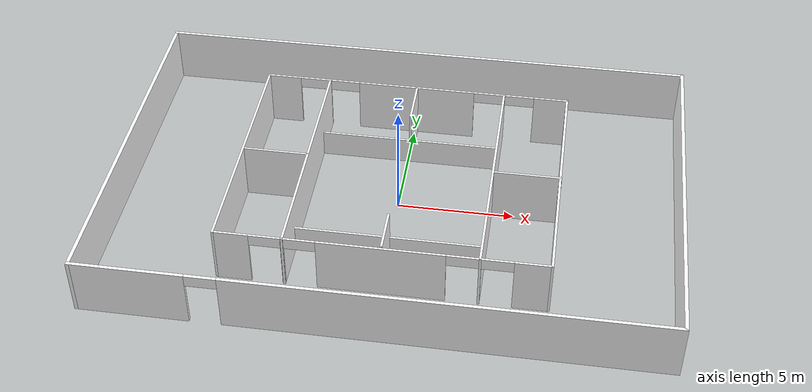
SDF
<?xml version='1.0'?>
<sdf version='1.7'>
  <model name='testbed_floor2'>
    <pose>0.036893 0.005445 0 0 -0 0</pose>
    <link name='Wall_0'>
      <collision name='Wall_0_Collision'>
        <geometry>
          <box>
            <size>24 0.15 2.5</size>
          </box>
        </geometry>
        <pose>0 0 1.25 0 -0 0</pose>
      </collision>
      <visual name='Wall_0_Visual'>
        <pose>0 0 1.25 0 -0 0</pose>
        <geometry>
          <box>
            <size>24 0.15 2.5</size>
          </box>
        </geometry>
        <material>
          <script>
            <uri>model://testbed_floor2/materials/scripts</uri>
            <uri>model://testbed_floor2/materials/textures</uri>

            <name>WallMaterial</name>
          </script>
          <ambient>1 1 1 1</ambient>
        </material>
        <meta>
          <layer>0</layer>
        </meta>
      </visual>
      <pose>0 7.925 0 0 -0 0</pose>
    </link>
    <link name='Wall_1'>
      <collision name='Wall_1_Collision'>
        <geometry>
          <box>
            <size>16 0.15 2.5</size>
          </box>
        </geometry>
        <pose>0 0 1.25 0 -0 0</pose>
      </collision>
      <visual name='Wall_1_Visual'>
        <pose>0 0 1.25 0 -0 0</pose>
        <geometry>
          <box>
            <size>16 0.15 2.5</size>
          </box>
        </geometry>
        <material>
          <script>
            <uri>model://testbed_floor2/materials/scripts</uri>
            <uri>model://testbed_floor2/materials/textures</uri>

            <name>WallMaterial</name>
          </script>
          <ambient>1 1 1 1</ambient>
        </material>
        <meta>
          <layer>0</layer>
        </meta>
      </visual>
      <pose>11.925 0 0 0 -0 -1.5708</pose>
    </link>
    <link name='Wall_16'>
      <collision name='Wall_16_Collision'>
        <geometry>
          <box>
            <size>10.7001 0.1 2.5</size>
          </box>
        </geometry>
        <pose>0 0 1.25 0 -0 0</pose>
      </collision>
      <visual name='Wall_16_Visual'>
        <pose>0 0 1.25 0 -0 0</pose>
        <geometry>
          <box>
            <size>10.7001 0.1 2.5</size>
          </box>
        </geometry>
        <material>
          <script>
            <uri>model://testbed_floor2/materials/scripts</uri>
            <uri>model://testbed_floor2/materials/textures</uri>

            <name>Wall3Material</name>
          </script>
          <ambient>1 1 1 1</ambient>
        </material>
        <meta>
          <layer>0</layer>
        </meta>
      </visual>
      <pose>-6.78889 -0.048445 0 0 -0 -1.5708</pose>
    </link>
    <link name='Wall_17'>
      <pose>0.011107 -5.34844 0 0 -0 0</pose>
      <visual name='Wall_17_Visual_0'>
        <pose>-6.09246 0 1.25 0 -0 0</pose>
        <geometry>
          <box>
            <size>1.51508 0.1 2.5</size>
          </box>
        </geometry>
        <material>
          <script>
            <uri>model://testbed_floor2/materials/scripts</uri>
            <uri>model://testbed_floor2/materials/textures</uri>

            <name>Wall2Material</name>
          </script>
          <ambient>1 1 1 1</ambient>
        </material>
        <meta>
          <layer>0</layer>
        </meta>
      </visual>
      <collision name='Wall_17_Collision_0'>
        <geometry>
          <box>
            <size>1.51508 0.1 2.5</size>
          </box>
        </geometry>
        <pose>-6.09246 0 1.25 0 -0 0</pose>
      </collision>
      <visual name='Wall_17_Visual_1'>
        <pose>-3.97545 0 1.25 0 -0 0</pose>
        <geometry>
          <box>
            <size>0.118938 0.1 2.5</size>
          </box>
        </geometry>
        <material>
          <script>
            <uri>model://testbed_floor2/materials/scripts</uri>
            <uri>model://testbed_floor2/materials/textures</uri>

            <name>Wall2Material</name>
          </script>
          <ambient>1 1 1 1</ambient>
        </material>
        <meta>
          <layer>0</layer>
        </meta>
      </visual>
      <collision name='Wall_17_Collision_1'>
        <geometry>
          <box>
            <size>0.118938 0.1 2.5</size>
          </box>
        </geometry>
        <pose>-3.97545 0 1.25 0 -0 0</pose>
      </collision>
      <visual name='Wall_17_Visual_2'>
        <pose>0.003583 0 1.25 0 -0 0</pose>
        <geometry>
          <box>
            <size>5.23912 0.1 2.5</size>
          </box>
        </geometry>
        <material>
          <script>
            <uri>model://testbed_floor2/materials/scripts</uri>
            <uri>model://testbed_floor2/materials/textures</uri>

            <name>Wall2Material</name>
          </script>
          <ambient>1 1 1 1</ambient>
        </material>
        <meta>
          <layer>0</layer>
        </meta>
      </visual>
      <collision name='Wall_17_Collision_2'>
        <geometry>
          <box>
            <size>5.23912 0.1 2.5</size>
          </box>
        </geometry>
        <pose>0.003583 0 1.25 0 -0 0</pose>
      </collision>
      <visual name='Wall_17_Visual_3'>
        <pose>3.97039 0 1.25 0 -0 0</pose>
        <geometry>
          <box>
            <size>0.09449 0.1 2.5</size>
          </box>
        </geometry>
        <material>
          <script>
            <uri>model://testbed_floor2/materials/scripts</uri>
            <uri>model://testbed_floor2/materials/textures</uri>

            <name>Wall2Material</name>
          </script>
          <ambient>1 1 1 1</ambient>
        </material>
        <meta>
          <layer>0</layer>
        </meta>
      </visual>
      <collision name='Wall_17_Collision_3'>
        <geometry>
          <box>
            <size>0.09449 0.1 2.5</size>
          </box>
        </geometry>
        <pose>3.97039 0 1.25 0 -0 0</pose>
      </collision>
      <visual name='Wall_17_Visual_4'>
        <pose>6.08382 0 1.25 0 -0 0</pose>
        <geometry>
          <box>
            <size>1.53236 0.1 2.5</size>
          </box>
        </geometry>
        <material>
          <script>
            <uri>model://testbed_floor2/materials/scripts</uri>
            <uri>model://testbed_floor2/materials/textures</uri>

            <name>Wall2Material</name>
          </script>
          <ambient>1 1 1 1</ambient>
        </material>
        <meta>
          <layer>0</layer>
        </meta>
      </visual>
      <collision name='Wall_17_Collision_4'>
        <geometry>
          <box>
            <size>1.53236 0.1 2.5</size>
          </box>
        </geometry>
        <pose>6.08382 0 1.25 0 -0 0</pose>
      </collision>
      <visual name='Wall_17_Visual_5'>
        <pose>-4.68492 0 2.25 0 -0 0</pose>
        <geometry>
          <box>
            <size>1.3 0.1 0.5</size>
          </box>
        </geometry>
        <material>
          <script>
            <uri>model://testbed_floor2/materials/scripts</uri>
            <uri>model://testbed_floor2/materials/textures</uri>

            <name>Wall2Material</name>
          </script>
          <ambient>1 1 1 1</ambient>
        </material>
        <meta>
          <layer>0</layer>
        </meta>
      </visual>
      <collision name='Wall_17_Collision_5'>
        <geometry>
          <box>
            <size>1.3 0.1 0.5</size>
          </box>
        </geometry>
        <pose>-4.68492 0 2.25 0 -0 0</pose>
      </collision>
      <visual name='Wall_17_Visual_6'>
        <pose>-3.26598 0 2.25 0 -0 0</pose>
        <geometry>
          <box>
            <size>1.3 0.1 0.5</size>
          </box>
        </geometry>
        <material>
          <script>
            <uri>model://testbed_floor2/materials/scripts</uri>
            <uri>model://testbed_floor2/materials/textures</uri>

            <name>Wall2Material</name>
          </script>
          <ambient>1 1 1 1</ambient>
        </material>
        <meta>
          <layer>0</layer>
        </meta>
      </visual>
      <collision name='Wall_17_Collision_6'>
        <geometry>
          <box>
            <size>1.3 0.1 0.5</size>
          </box>
        </geometry>
        <pose>-3.26598 0 2.25 0 -0 0</pose>
      </collision>
      <visual name='Wall_17_Visual_7'>
        <pose>3.27314 0 2.25 0 -0 0</pose>
        <geometry>
          <box>
            <size>1.3 0.1 0.5</size>
          </box>
        </geometry>
        <material>
          <script>
            <uri>model://testbed_floor2/materials/scripts</uri>
            <uri>model://testbed_floor2/materials/textures</uri>

            <name>Wall2Material</name>
          </script>
          <ambient>1 1 1 1</ambient>
        </material>
        <meta>
          <layer>0</layer>
        </meta>
      </visual>
      <collision name='Wall_17_Collision_7'>
        <geometry>
          <box>
            <size>1.3 0.1 0.5</size>
          </box>
        </geometry>
        <pose>3.27314 0 2.25 0 -0 0</pose>
      </collision>
      <visual name='Wall_17_Visual_8'>
        <pose>4.66763 0 2.25 0 -0 0</pose>
        <geometry>
          <box>
            <size>1.3 0.1 0.5</size>
          </box>
        </geometry>
        <material>
          <script>
            <uri>model://testbed_floor2/materials/scripts</uri>
            <uri>model://testbed_floor2/materials/textures</uri>

            <name>Wall2Material</name>
          </script>
          <ambient>1 1 1 1</ambient>
        </material>
        <meta>
          <layer>0</layer>
        </meta>
      </visual>
      <collision name='Wall_17_Collision_8'>
        <geometry>
          <box>
            <size>1.3 0.1 0.5</size>
          </box>
        </geometry>
        <pose>4.66763 0 2.25 0 -0 0</pose>
      </collision>
    </link>
    <link name='Wall_18'>
      <collision name='Wall_18_Collision'>
        <geometry>
          <box>
            <size>10.7 0.1 2.5</size>
          </box>
        </geometry>
        <pose>0 0 1.25 0 -0 0</pose>
      </collision>
      <visual name='Wall_18_Visual'>
        <pose>0 0 1.25 0 -0 0</pose>
        <geometry>
          <box>
            <size>10.7 0.1 2.5</size>
          </box>
        </geometry>
        <material>
          <script>
            <uri>model://testbed_floor2/materials/scripts</uri>
            <uri>model://testbed_floor2/materials/textures</uri>

            <name>Wall3Material</name>
          </script>
          <ambient>1 1 1 1</ambient>
        </material>
        <meta>
          <layer>0</layer>
        </meta>
      </visual>
      <pose>6.81111 -0.048445 0 0 -0 1.5708</pose>
    </link>
    <link name='Wall_19'>
      <pose>0.011107 5.25155 0 0 -0 3.14159</pose>
      <visual name='Wall_19_Visual_0'>
        <pose>-6.08399 0 1.25 0 -0 0</pose>
        <geometry>
          <box>
            <size>1.53202 0.1 2.5</size>
          </box>
        </geometry>
        <material>
          <script>
            <uri>model://testbed_floor2/materials/scripts</uri>
            <uri>model://testbed_floor2/materials/textures</uri>

            <name>Wall3Material</name>
          </script>
          <ambient>1 1 1 1</ambient>
        </material>
        <meta>
          <layer>0</layer>
        </meta>
      </visual>
      <collision name='Wall_19_Collision_0'>
        <geometry>
          <box>
            <size>1.53202 0.1 2.5</size>
          </box>
        </geometry>
        <pose>-6.08399 0 1.25 0 -0 0</pose>
      </collision>
      <visual name='Wall_19_Visual_1'>
        <pose>-3.96706 0 1.25 0 -0 0</pose>
        <geometry>
          <box>
            <size>0.10185 0.1 2.5</size>
          </box>
        </geometry>
        <material>
          <script>
            <uri>model://testbed_floor2/materials/scripts</uri>
            <uri>model://testbed_floor2/materials/textures</uri>

            <name>Wall3Material</name>
          </script>
          <ambient>1 1 1 1</ambient>
        </material>
        <meta>
          <layer>0</layer>
        </meta>
      </visual>
      <collision name='Wall_19_Collision_1'>
        <geometry>
          <box>
            <size>0.10185 0.1 2.5</size>
          </box>
        </geometry>
        <pose>-3.96706 0 1.25 0 -0 0</pose>
      </collision>
      <visual name='Wall_19_Visual_2'>
        <pose>0.004175 0 1.25 0 -0 0</pose>
        <geometry>
          <box>
            <size>5.24062 0.1 2.5</size>
          </box>
        </geometry>
        <material>
          <script>
            <uri>model://testbed_floor2/materials/scripts</uri>
            <uri>model://testbed_floor2/materials/textures</uri>

            <name>Wall3Material</name>
          </script>
          <ambient>1 1 1 1</ambient>
        </material>
        <meta>
          <layer>0</layer>
        </meta>
      </visual>
      <collision name='Wall_19_Collision_2'>
        <geometry>
          <box>
            <size>5.24062 0.1 2.5</size>
          </box>
        </geometry>
        <pose>0.004175 0 1.25 0 -0 0</pose>
      </collision>
      <visual name='Wall_19_Visual_3'>
        <pose>3.98024 0 1.25 0 -0 0</pose>
        <geometry>
          <box>
            <size>0.111498 0.1 2.5</size>
          </box>
        </geometry>
        <material>
          <script>
            <uri>model://testbed_floor2/materials/scripts</uri>
            <uri>model://testbed_floor2/materials/textures</uri>

            <name>Wall3Material</name>
          </script>
          <ambient>1 1 1 1</ambient>
        </material>
        <meta>
          <layer>0</layer>
        </meta>
      </visual>
      <collision name='Wall_19_Collision_3'>
        <geometry>
          <box>
            <size>0.111498 0.1 2.5</size>
          </box>
        </geometry>
        <pose>3.98024 0 1.25 0 -0 0</pose>
      </collision>
      <visual name='Wall_19_Visual_4'>
        <pose>6.093 0 1.25 0 -0 0</pose>
        <geometry>
          <box>
            <size>1.51402 0.1 2.5</size>
          </box>
        </geometry>
        <material>
          <script>
            <uri>model://testbed_floor2/materials/scripts</uri>
            <uri>model://testbed_floor2/materials/textures</uri>

            <name>Wall3Material</name>
          </script>
          <ambient>1 1 1 1</ambient>
        </material>
        <meta>
          <layer>0</layer>
        </meta>
      </visual>
      <collision name='Wall_19_Collision_4'>
        <geometry>
          <box>
            <size>1.51402 0.1 2.5</size>
          </box>
        </geometry>
        <pose>6.093 0 1.25 0 -0 0</pose>
      </collision>
      <visual name='Wall_19_Visual_5'>
        <pose>-4.66799 0 2.25 0 -0 0</pose>
        <geometry>
          <box>
            <size>1.3 0.1 0.5</size>
          </box>
        </geometry>
        <material>
          <script>
            <uri>model://testbed_floor2/materials/scripts</uri>
            <uri>model://testbed_floor2/materials/textures</uri>

            <name>Wall3Material</name>
          </script>
          <ambient>1 1 1 1</ambient>
        </material>
        <meta>
          <layer>0</layer>
        </meta>
      </visual>
      <collision name='Wall_19_Collision_5'>
        <geometry>
          <box>
            <size>1.3 0.1 0.5</size>
          </box>
        </geometry>
        <pose>-4.66799 0 2.25 0 -0 0</pose>
      </collision>
      <visual name='Wall_19_Visual_6'>
        <pose>-3.26614 0 2.25 0 -0 0</pose>
        <geometry>
          <box>
            <size>1.3 0.1 0.5</size>
          </box>
        </geometry>
        <material>
          <script>
            <uri>model://testbed_floor2/materials/scripts</uri>
            <uri>model://testbed_floor2/materials/textures</uri>

            <name>Wall3Material</name>
          </script>
          <ambient>1 1 1 1</ambient>
        </material>
        <meta>
          <layer>0</layer>
        </meta>
      </visual>
      <collision name='Wall_19_Collision_6'>
        <geometry>
          <box>
            <size>1.3 0.1 0.5</size>
          </box>
        </geometry>
        <pose>-3.26614 0 2.25 0 -0 0</pose>
      </collision>
      <visual name='Wall_19_Visual_7'>
        <pose>3.27449 0 2.25 0 -0 0</pose>
        <geometry>
          <box>
            <size>1.3 0.1 0.5</size>
          </box>
        </geometry>
        <material>
          <script>
            <uri>model://testbed_floor2/materials/scripts</uri>
            <uri>model://testbed_floor2/materials/textures</uri>

            <name>Wall3Material</name>
          </script>
          <ambient>1 1 1 1</ambient>
        </material>
        <meta>
          <layer>0</layer>
        </meta>
      </visual>
      <collision name='Wall_19_Collision_7'>
        <geometry>
          <box>
            <size>1.3 0.1 0.5</size>
          </box>
        </geometry>
        <pose>3.27449 0 2.25 0 -0 0</pose>
      </collision>
      <visual name='Wall_19_Visual_8'>
        <pose>4.68598 0 2.25 0 -0 0</pose>
        <geometry>
          <box>
            <size>1.3 0.1 0.5</size>
          </box>
        </geometry>
        <material>
          <script>
            <uri>model://testbed_floor2/materials/scripts</uri>
            <uri>model://testbed_floor2/materials/textures</uri>

            <name>Wall3Material</name>
          </script>
          <ambient>1 1 1 1</ambient>
        </material>
        <meta>
          <layer>0</layer>
        </meta>
      </visual>
      <collision name='Wall_19_Collision_8'>
        <geometry>
          <box>
            <size>1.3 0.1 0.5</size>
          </box>
        </geometry>
        <pose>4.68598 0 2.25 0 -0 0</pose>
      </collision>
    </link>
    <link name='Wall_2'>
      <pose>0 -7.925 0 0 -0 3.14159</pose>
      <visual name='Wall_2_Visual_0'>
        <pose>-3.01492 0 1.25 0 -0 0</pose>
        <geometry>
          <box>
            <size>17.9702 0.15 2.5</size>
          </box>
        </geometry>
        <material>
          <script>
            <uri>model://testbed_floor2/materials/scripts</uri>
            <uri>model://testbed_floor2/materials/textures</uri>

            <name>WallMaterial</name>
          </script>
          <ambient>1 1 1 1</ambient>
        </material>
        <meta>
          <layer>0</layer>
        </meta>
      </visual>
      <collision name='Wall_2_Collision_0'>
        <geometry>
          <box>
            <size>17.9702 0.15 2.5</size>
          </box>
        </geometry>
        <pose>-3.01492 0 1.25 0 -0 0</pose>
      </collision>
      <visual name='Wall_2_Visual_1'>
        <pose>9.63508 0 1.25 0 -0 0</pose>
        <geometry>
          <box>
            <size>4.72984 0.15 2.5</size>
          </box>
        </geometry>
        <material>
          <script>
            <uri>model://testbed_floor2/materials/scripts</uri>
            <uri>model://testbed_floor2/materials/textures</uri>

            <name>WallMaterial</name>
          </script>
          <ambient>1 1 1 1</ambient>
        </material>
        <meta>
          <layer>0</layer>
        </meta>
      </visual>
      <collision name='Wall_2_Collision_1'>
        <geometry>
          <box>
            <size>4.72984 0.15 2.5</size>
          </box>
        </geometry>
        <pose>9.63508 0 1.25 0 -0 0</pose>
      </collision>
      <visual name='Wall_2_Visual_2'>
        <pose>6.62016 0 2.25 0 -0 0</pose>
        <geometry>
          <box>
            <size>1.3 0.15 0.5</size>
          </box>
        </geometry>
        <material>
          <script>
            <uri>model://testbed_floor2/materials/scripts</uri>
            <uri>model://testbed_floor2/materials/textures</uri>

            <name>WallMaterial</name>
          </script>
          <ambient>1 1 1 1</ambient>
        </material>
        <meta>
          <layer>0</layer>
        </meta>
      </visual>
      <collision name='Wall_2_Collision_2'>
        <geometry>
          <box>
            <size>1.3 0.15 0.5</size>
          </box>
        </geometry>
        <pose>6.62016 0 2.25 0 -0 0</pose>
      </collision>
    </link>
    <link name='Wall_21'>
      <collision name='Wall_21_Collision'>
        <geometry>
          <box>
            <size>10.6 0.1 2.5</size>
          </box>
        </geometry>
        <pose>0 0 1.25 0 -0 0</pose>
      </collision>
      <visual name='Wall_21_Visual'>
        <pose>0 0 1.25 0 -0 0</pose>
        <geometry>
          <box>
            <size>10.6 0.1 2.5</size>
          </box>
        </geometry>
        <material>
          <script>
            <uri>model://testbed_floor2/materials/scripts</uri>
            <uri>model://testbed_floor2/materials/textures</uri>

            <name>Wall3Material</name>
          </script>
          <ambient>1 1 1 1</ambient>
        </material>
        <meta>
          <layer>0</layer>
        </meta>
      </visual>
      <pose>-3.95986 -0.104445 0 0 -0 -1.5708</pose>
    </link>
    <link name='Wall_29'>
      <collision name='Wall_29_Collision'>
        <geometry>
          <box>
            <size>2.8 0.1 2.5</size>
          </box>
        </geometry>
        <pose>0 0 1.25 0 -0 0</pose>
      </collision>
      <visual name='Wall_29_Visual'>
        <pose>0 0 1.25 0 -0 0</pose>
        <geometry>
          <box>
            <size>2.8 0.1 2.5</size>
          </box>
        </geometry>
        <material>
          <script>
            <uri>model://testbed_floor2/materials/scripts</uri>
            <uri>model://testbed_floor2/materials/textures</uri>

            <name>InnerWallMaterial</name>
          </script>
          <ambient>1 1 1 1</ambient>
        </material>
        <meta>
          <layer>0</layer>
        </meta>
      </visual>
      <pose>-5.33289 -0.060445 0 0 -0 0</pose>
    </link>
    <link name='Wall_31'>
      <collision name='Wall_31_Collision'>
        <geometry>
          <box>
            <size>2.9 0.1 2.5</size>
          </box>
        </geometry>
        <pose>0 0 1.25 0 -0 0</pose>
      </collision>
      <visual name='Wall_31_Visual'>
        <pose>0 0 1.25 0 -0 0</pose>
        <geometry>
          <box>
            <size>2.9 0.1 2.5</size>
          </box>
        </geometry>
        <material>
          <script>
            <uri>model://testbed_floor2/materials/scripts</uri>
            <uri>model://testbed_floor2/materials/textures</uri>

            <name>WallMaterial</name>
          </script>
          <ambient>1 1 1 1</ambient>
        </material>
        <meta>
          <layer>0</layer>
        </meta>
      </visual>
      <pose>5.42511 -0.060445 0 0 -0 3.14159</pose>
    </link>
    <link name='Wall_34'>
      <collision name='Wall_34_Collision'>
        <geometry>
          <box>
            <size>7.95047 0.1 1.2</size>
          </box>
        </geometry>
        <pose>0 0 0.6 0 -0 0</pose>
      </collision>
      <visual name='Wall_34_Visual'>
        <pose>0 0 0.6 0 -0 0</pose>
        <geometry>
          <box>
            <size>7.95047 0.1 1.2</size>
          </box>
        </geometry>
        <material>
          <script>
            <uri>model://testbed_floor2/materials/scripts</uri>
            <uri>model://testbed_floor2/materials/textures</uri>

            <name>Wall3Material</name>
          </script>
          <ambient>1 1 1 1</ambient>
        </material>
        <meta>
          <layer>0</layer>
        </meta>
      </visual>
      <pose>-0.014893 -3.29745 0 0 -0 0</pose>
    </link>
    <link name='Wall_36'>
      <collision name='Wall_36_Collision'>
        <geometry>
          <box>
            <size>7.95029 0.1 1.2</size>
          </box>
        </geometry>
        <pose>0 0 0.6 0 -0 0</pose>
      </collision>
      <visual name='Wall_36_Visual'>
        <pose>0 0 0.6 0 -0 0</pose>
        <geometry>
          <box>
            <size>7.95029 0.1 1.2</size>
          </box>
        </geometry>
        <material>
          <script>
            <uri>model://testbed_floor2/materials/scripts</uri>
            <uri>model://testbed_floor2/materials/textures</uri>

            <name>Wall3Material</name>
          </script>
          <ambient>1 1 1 1</ambient>
        </material>
        <meta>
          <layer>0</layer>
        </meta>
      </visual>
      <pose>-0.049893 3.07056 0 0 -0 0</pose>
    </link>
    <link name='Wall_38'>
      <collision name='Wall_38_Collision'>
        <geometry>
          <box>
            <size>1.94976 0.1 2.5</size>
          </box>
        </geometry>
        <pose>0 0 1.25 0 -0 0</pose>
      </collision>
      <visual name='Wall_38_Visual'>
        <pose>0 0 1.25 0 -0 0</pose>
        <geometry>
          <box>
            <size>1.94976 0.1 2.5</size>
          </box>
        </geometry>
        <material>
          <script>
            <uri>model://testbed_floor2/materials/scripts</uri>
            <uri>model://testbed_floor2/materials/textures</uri>

            <name>WallMaterial</name>
          </script>
          <ambient>1 1 1 1</ambient>
        </material>
        <meta>
          <layer>0</layer>
        </meta>
      </visual>
      <pose>0.036107 -4.25744 0 0 -0 -1.5708</pose>
    </link>
    <link name='Wall_4'>
      <collision name='Wall_4_Collision'>
        <geometry>
          <box>
            <size>16 0.15 2.5</size>
          </box>
        </geometry>
        <pose>0 0 1.25 0 -0 0</pose>
      </collision>
      <visual name='Wall_4_Visual'>
        <pose>0 0 1.25 0 -0 0</pose>
        <geometry>
          <box>
            <size>16 0.15 2.5</size>
          </box>
        </geometry>
        <material>
          <script>
            <uri>model://testbed_floor2/materials/scripts</uri>
            <uri>model://testbed_floor2/materials/textures</uri>

            <name>WallMaterial</name>
          </script>
          <ambient>1 1 1 1</ambient>
        </material>
        <meta>
          <layer>0</layer>
        </meta>
      </visual>
      <pose>-11.925 0 0 0 -0 -1.5708</pose>
    </link>
    <link name='Wall_40'>
      <collision name='Wall_40_Collision'>
        <geometry>
          <box>
            <size>2.20014 0.1 2.5</size>
          </box>
        </geometry>
        <pose>0 0 1.25 0 -0 0</pose>
      </collision>
      <visual name='Wall_40_Visual'>
        <pose>0 0 1.25 0 -0 0</pose>
        <geometry>
          <box>
            <size>2.20014 0.1 2.5</size>
          </box>
        </geometry>
        <material>
          <script>
            <uri>model://testbed_floor2/materials/scripts</uri>
            <uri>model://testbed_floor2/materials/textures</uri>

            <name>WallMaterial</name>
          </script>
          <ambient>1 1 1 1</ambient>
        </material>
        <meta>
          <layer>0</layer>
        </meta>
      </visual>
      <pose>0.036107 4.20155 0 0 -0 -1.5708</pose>
    </link>
    <link name='Wall_62'>
      <collision name='Wall_62_Collision'>
        <geometry>
          <box>
            <size>10.6 0.1 2.5</size>
          </box>
        </geometry>
        <pose>0 0 1.25 0 -0 0</pose>
      </collision>
      <visual name='Wall_62_Visual'>
        <pose>0 0 1.25 0 -0 0</pose>
        <geometry>
          <box>
            <size>10.6 0.1 2.5</size>
          </box>
        </geometry>
        <material>
          <script>
            <uri>model://testbed_floor2/materials/scripts</uri>
            <uri>model://testbed_floor2/materials/textures</uri>

            <name>Wall3Material</name>
          </script>
          <ambient>1 1 1 1</ambient>
        </material>
        <meta>
          <layer>0</layer>
        </meta>
      </visual>
      <pose>3.98015 -0.051151 0 0 -0 -1.5708</pose>
    </link>
    <static>1</static>
  </model>
</sdf>
